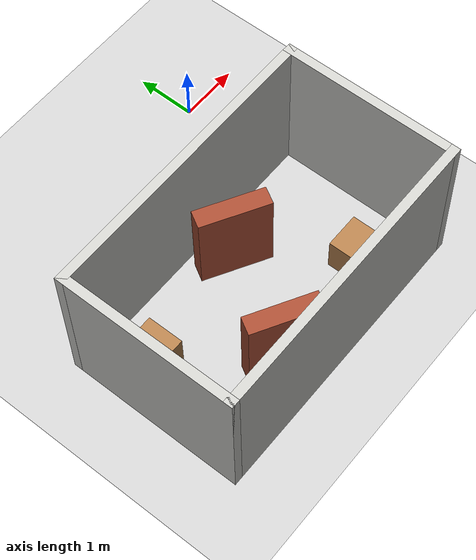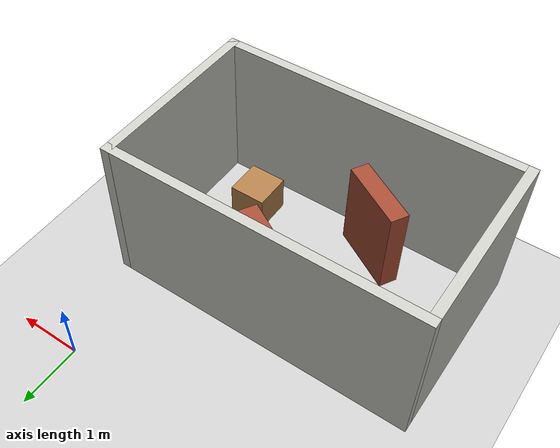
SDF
<sdf version="1.6">
 <world name="default">
  <light name="sun" type="directional">
   <pose>0 0 10 0 -0 0</pose>
   <diffuse>0.8 0.8 0.8 1</diffuse>
   <specular>0.2 0.2 0.2 1</specular>
   <attenuation>
    <range>1000</range>
    <constant>0.9</constant>
    <linear>0.01</linear>
    <quadratic>0.001</quadratic>
   </attenuation>
   <direction>-0.5 0.1 -0.9</direction>
  </light>
  <model name="ground_plane">
   <static>1</static>
   <link name="link">
    <collision name="collision">
     <geometry><plane><normal>0 0 1</normal><size>100 100</size></plane></geometry>
     <surface><friction><ode><mu>100</mu><mu2>50</mu2></ode></friction></surface>
    </collision>
    <visual name="visual">
     <cast_shadows>0</cast_shadows>
     <geometry><plane><normal>0 0 1</normal><size>100 100</size></plane></geometry>
     <material>
      <script><uri>file://media/materials/scripts/gazebo.material</uri><name>Gazebo/Grey</name></script>
     </material>
    </visual>
   </link>
  </model>
  <gravity>0 0 -9.8</gravity>
  <magnetic_field>6e-06 2.3e-05 -4.2e-05</magnetic_field>
  <atmosphere type="adiabatic"/>
  <physics name="default_physics" default="0" type="ode">
   <max_step_size>0.01</max_step_size>
   <real_time_update_rate>1000</real_time_update_rate>
  </physics>
  <scene><ambient>0.4 0.4 0.4 1</ambient><background>0.7 0.7 0.7 1</background><shadows>1</shadows></scene>
  <spherical_coordinates>
   <surface_model>EARTH_WGS84</surface_model>
   <latitude_deg>0</latitude_deg>
   <longitude_deg>0</longitude_deg>
   <elevation>0</elevation>
   <heading_deg>0</heading_deg>
  </spherical_coordinates>
  <model name="env6">
   <pose>-2.015 -3.115 0 0 -0 0</pose>
   <link name="Wall_0">
    <collision name="Wall_0_Collision">
     <geometry><box><size>3 0.15 2.5</size></box></geometry>
     <pose>0 0 1.25 0 -0 0</pose>
    </collision>
    <visual name="Wall_0_Visual">
     <pose>0 0 1.25 0 -0 0</pose>
     <geometry><box><size>3 0.15 2.5</size></box></geometry>
     <material>
      <script><uri>file://media/materials/scripts/gazebo.material</uri><name>Gazebo/CeilingTiled</name></script>
      <ambient>0.760784 0.662745 0.627451 1</ambient>
     </material>
     <meta><layer>0</layer></meta>
    </visual>
    <pose>-2.425 0 0 0 0 -1.5708</pose>
   </link>
   <link name="Wall_1">
    <collision name="Wall_1_Collision">
     <geometry><box><size>5 0.15 2.5</size></box></geometry>
     <pose>0 0 1.25 0 -0 0</pose>
    </collision>
    <visual name="Wall_1_Visual">
     <pose>0 0 1.25 0 -0 0</pose>
     <geometry><box><size>5 0.15 2.5</size></box></geometry>
     <material>
      <script><uri>file://media/materials/scripts/gazebo.material</uri><name>Gazebo/CeilingTiled</name></script>
      <ambient>0.760784 0.662745 0.627451 1</ambient>
     </material>
     <meta><layer>0</layer></meta>
    </visual>
    <pose>0 -1.425 0 0 -0 0</pose>
   </link>
   <link name="Wall_11">
    <collision name="Wall_11_Collision">
     <geometry><box><size>1.15 0.3 1.5</size></box></geometry>
     <pose>0 0 0.75 0 -0 0</pose>
    </collision>
    <visual name="Wall_11_Visual">
     <pose>0 0 0.75 0 -0 0</pose>
     <geometry><box><size>1.15 0.3 1.5</size></box></geometry>
     <material>
      <script><uri>file://media/materials/scripts/gazebo.material</uri><name>Gazebo/Bricks</name></script>
      <ambient>1 1 1 1</ambient>
     </material>
     <meta><layer>0</layer></meta>
    </visual>
    <pose>-0.597 -0.8375 0 0 0 -0.52367</pose>
   </link>
   <link name="Wall_2">
    <collision name="Wall_2_Collision">
     <geometry><box><size>3 0.15 2.5</size></box></geometry>
     <pose>0 0 1.25 0 -0 0</pose>
    </collision>
    <visual name="Wall_2_Visual">
     <pose>0 0 1.25 0 -0 0</pose>
     <geometry><box><size>3 0.15 2.5</size></box></geometry>
     <material>
      <script><uri>file://media/materials/scripts/gazebo.material</uri><name>Gazebo/CeilingTiled</name></script>
      <ambient>0.760784 0.662745 0.627451 1</ambient>
     </material>
     <meta><layer>0</layer></meta>
    </visual>
    <pose>2.425 0 0 0 -0 1.5708</pose>
   </link>
   <link name="Wall_3">
    <collision name="Wall_3_Collision">
     <geometry><box><size>5 0.15 2.5</size></box></geometry>
     <pose>0 0 1.25 0 -0 0</pose>
    </collision>
    <visual name="Wall_3_Visual">
     <pose>0 0 1.25 0 -0 0</pose>
     <geometry><box><size>5 0.15 2.5</size></box></geometry>
     <material>
      <script><uri>file://media/materials/scripts/gazebo.material</uri><name>Gazebo/CeilingTiled</name></script>
      <ambient>0.760784 0.662745 0.627451 1</ambient>
     </material>
     <meta><layer>0</layer></meta>
    </visual>
    <pose>0 1.425 0 0 -0 3.14159</pose>
   </link>
   <link name="Wall_5">
    <collision name="Wall_5_Collision">
     <geometry><box><size>0.61 0.6 0.6</size></box></geometry>
     <pose>0 0 0.3 0 -0 0</pose>
    </collision>
    <visual name="Wall_5_Visual">
     <pose>0 0 0.3 0 -0 0</pose>
     <geometry><box><size>0.61 0.6 0.6</size></box></geometry>
     <material>
      <script><uri>file://media/materials/scripts/gazebo.material</uri><name>Gazebo/Wood</name></script>
      <ambient>1 1 1 1</ambient>
     </material>
     <meta><layer>0</layer></meta>
    </visual>
    <pose>-1.765 0.61 0 0 0 -1.5708</pose>
   </link>
   <link name="Wall_7">
    <collision name="Wall_7_Collision">
     <geometry><box><size>0.61 0.6 0.6</size></box></geometry>
     <pose>0 0 0.3 0 -0 0</pose>
    </collision>
    <visual name="Wall_7_Visual">
     <pose>0 0 0.3 0 -0 0</pose>
     <geometry><box><size>0.61 0.6 0.6</size></box></geometry>
     <material>
      <script><uri>file://media/materials/scripts/gazebo.material</uri><name>Gazebo/Wood</name></script>
      <ambient>1 1 1 1</ambient>
     </material>
     <meta><layer>0</layer></meta>
    </visual>
    <pose>1.435 -0.66 0 0 0 -1.5708</pose>
   </link>
   <link name="Wall_9">
    <collision name="Wall_9_Collision">
     <geometry><box><size>1.15 0.3 1.5</size></box></geometry>
     <pose>0 0 0.75 0 -0 0</pose>
    </collision>
    <visual name="Wall_9_Visual">
     <pose>0 0 0.75 0 -0 0</pose>
     <geometry><box><size>1.15 0.3 1.5</size></box></geometry>
     <material>
      <script><uri>file://media/materials/scripts/gazebo.material</uri><name>Gazebo/Bricks</name></script>
      <ambient>1 1 1 1</ambient>
     </material>
     <meta><layer>0</layer></meta>
    </visual>
    <pose>0.293 0.7925 0 0 0 -0.52367</pose>
   </link>
   <static>1</static>
  </model>
 </world>
</sdf>
